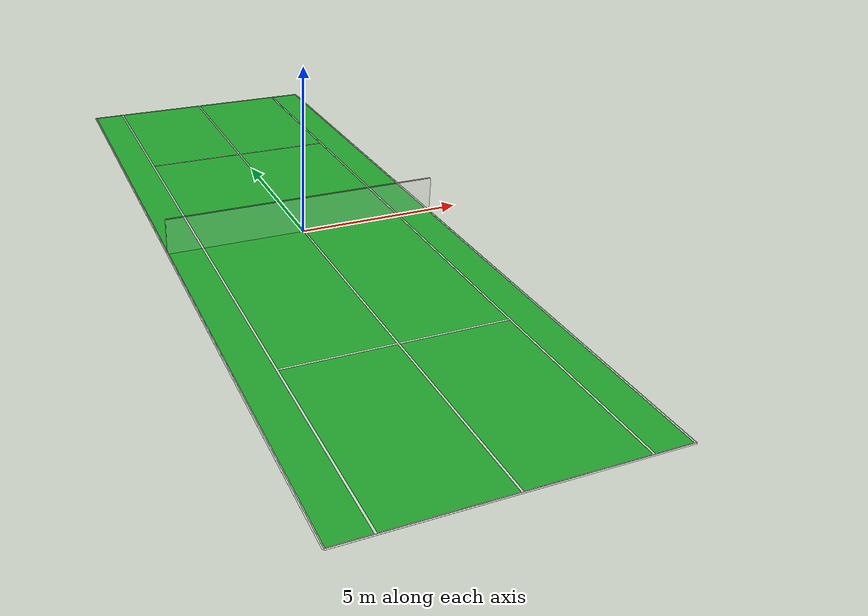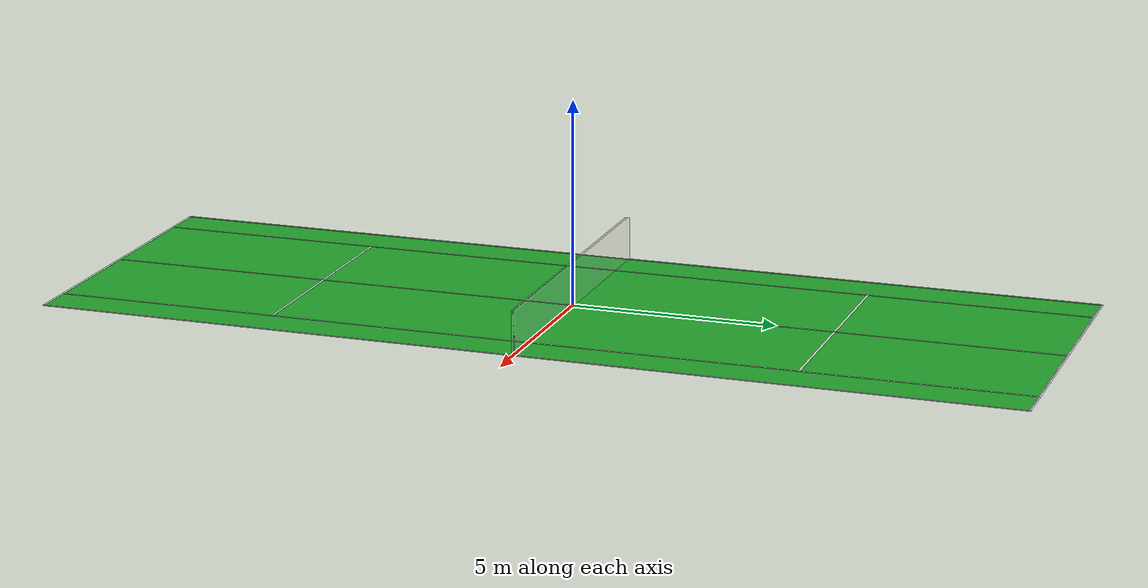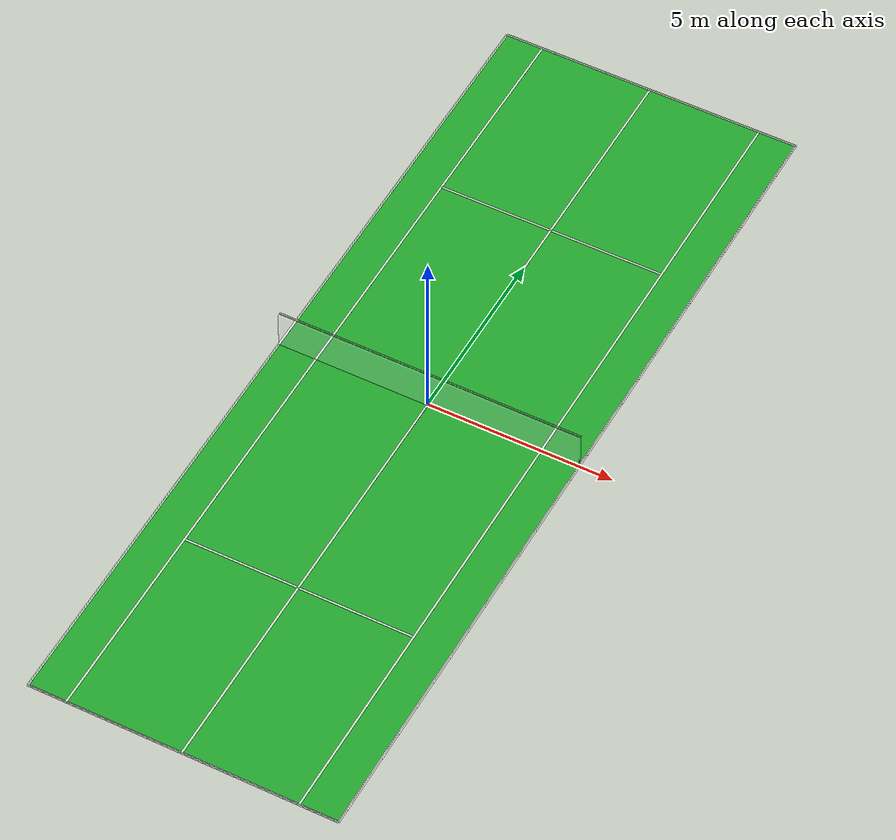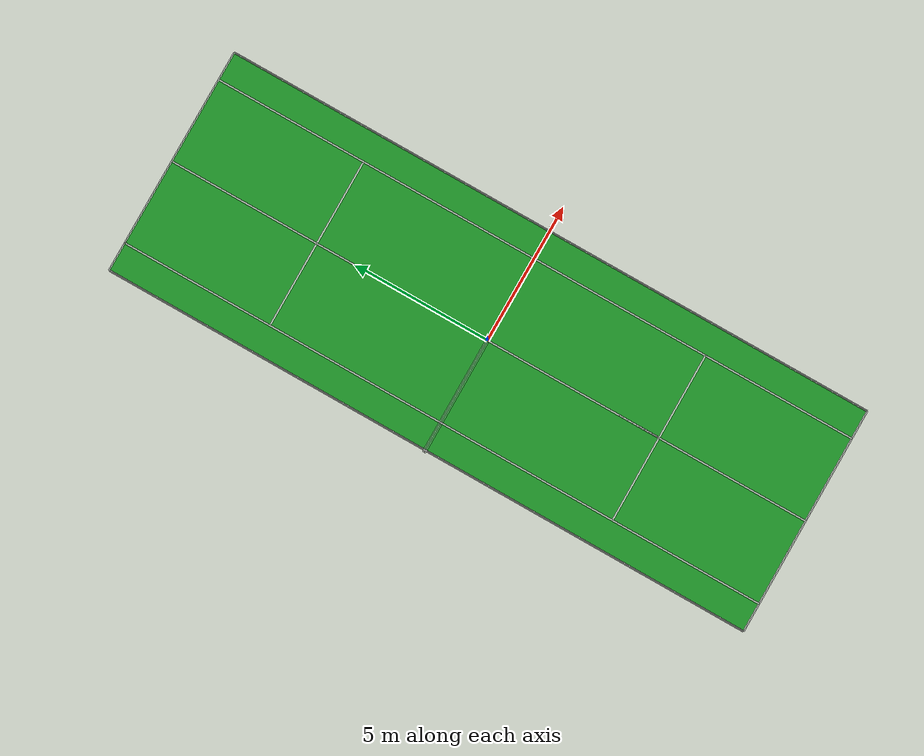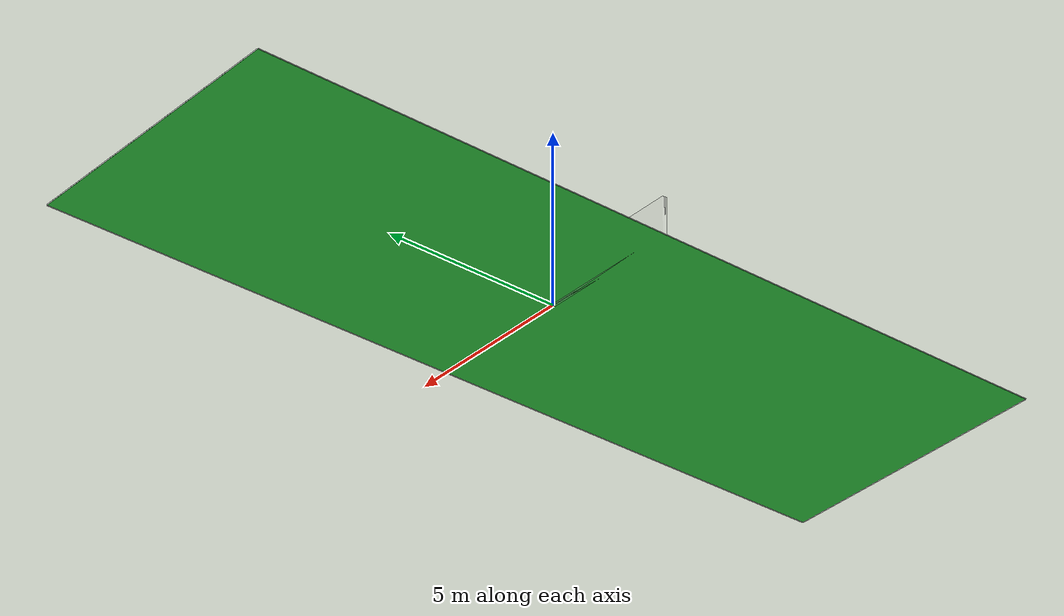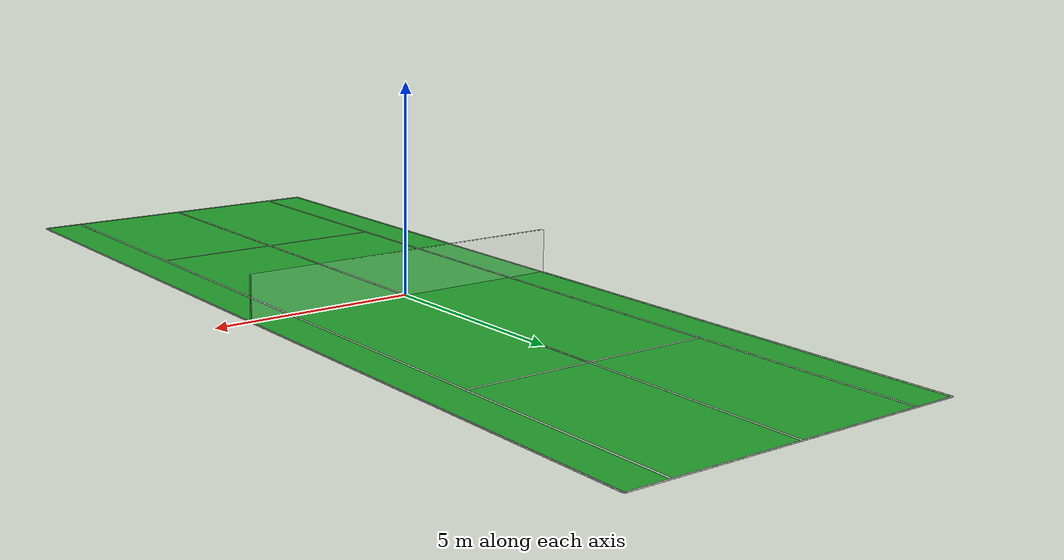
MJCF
<mujoco model="tennis_court">
  <asset>
    <texture name="tennis_court_tex" type="2d" file="tennis/tennis_court_green.png" />
    <material name="tennis_court_material" texture="tennis_court_tex" texuniform="true" texrepeat="1 1" reflectance="0.03" />
  </asset>
  <worldbody>
    <body name="tennis_court_root" pos="0 0 0">
      <geom name="court_visual" type="box" pos="0 0 0.001" size="4.11 11.89 0.001" material="tennis_court_material" contype="0" conaffinity="0" />
      <geom name="court_center_line" type="box" pos="0 0 0.002" size="0.03 11.89 0.0005" rgba="0.94 0.94 0.94 1.0" contype="0" conaffinity="0" />
      <geom name="court_left_line" type="box" pos="-4.11 0 0.002" size="0.03 11.89 0.0005" rgba="0.94 0.94 0.94 1.0" contype="0" conaffinity="0" />
      <geom name="court_right_line" type="box" pos="4.11 0 0.002" size="0.03 11.89 0.0005" rgba="0.94 0.94 0.94 1.0" contype="0" conaffinity="0" />
      <geom name="court_left_singles_line" type="box" pos="-3.0825 0 0.002" size="0.03 11.89 0.0005" rgba="0.94 0.94 0.94 1.0" contype="0" conaffinity="0" />
      <geom name="court_right_singles_line" type="box" pos="3.0825 0 0.002" size="0.03 11.89 0.0005" rgba="0.94 0.94 0.94 1.0" contype="0" conaffinity="0" />
      <geom name="court_service_line_near" type="box" pos="0 -6.4206 0.002" size="3.0825 0.03 0.0005" rgba="0.94 0.94 0.94 1.0" contype="0" conaffinity="0" />
      <geom name="court_service_line_far" type="box" pos="0 6.4206 0.002" size="3.0825 0.03 0.0005" rgba="0.94 0.94 0.94 1.0" contype="0" conaffinity="0" />
      <geom name="court_center_service_line_near" type="box" pos="0 -3.2103 0.002" size="0.03 3.2103 0.0005" rgba="0.94 0.94 0.94 1.0" contype="0" conaffinity="0" />
      <geom name="court_center_service_line_far" type="box" pos="0 3.2103 0.002" size="0.03 3.2103 0.0005" rgba="0.94 0.94 0.94 1.0" contype="0" conaffinity="0" />
      <geom name="court_baseline_near" type="box" pos="0 -11.89 0.002" size="4.11 0.03 0.0005" rgba="0.94 0.94 0.94 1.0" contype="0" conaffinity="0" />
      <geom name="court_baseline_far" type="box" pos="0 11.89 0.002" size="4.11 0.03 0.0005" rgba="0.94 0.94 0.94 1.0" contype="0" conaffinity="0" />
      <geom name="tennis_net_visual" type="box" pos="0 0 0.535" size="4.11 0.02 0.535" rgba="0.9 0.9 0.9 0.4" contype="0" conaffinity="0" />
      <geom name="tennis_net_collision" type="box" pos="0 0 0.535" size="4.11 0.06 0.535" rgba="0.9 0.9 0.9 0.05" condim="3" friction="0.80 0.05 0.01" contype="4" conaffinity="0" />
      <geom name="tennis_court_ball_collision" type="box" pos="0 0 0.008" size="4.11 11.89 0.008" rgba="0.1 0.9 0.1 0.02" condim="3" friction="0.45 0.01 0.001" solref="0.010 0.080" contype="0" conaffinity="0" />
      <geom name="tennis_court_racket_collision" type="box" pos="0 0 0.01" size="4.11 11.89 0.01" rgba="0.1 0.6 0.1 0.03" condim="3" friction="0.90 0.05 0.01" contype="0" conaffinity="0" />
    </body>
  </worldbody>
</mujoco>
